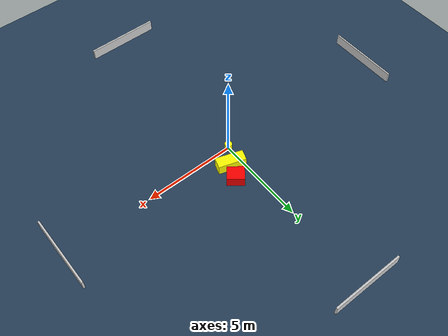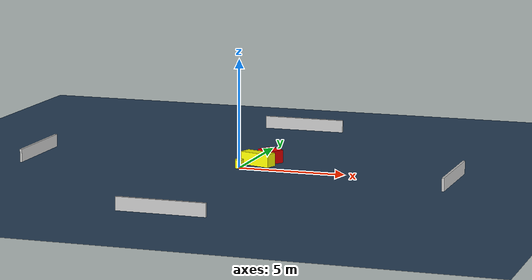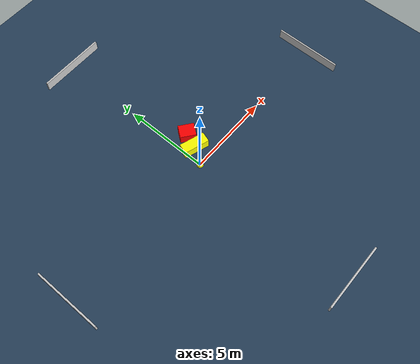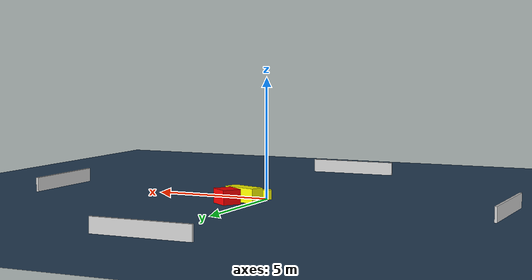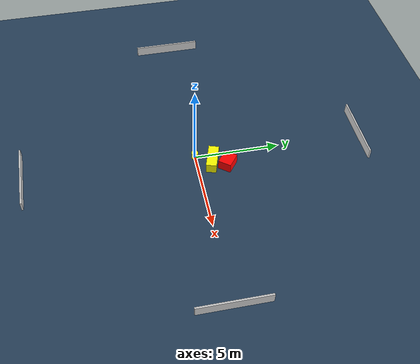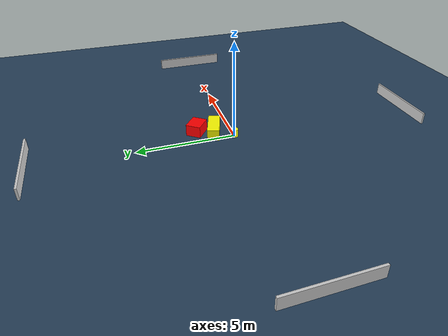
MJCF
<?xml version="1.0" ?>
<mujoco model="generated_environment">
  <option timestep="0.01" integrator="RK4" cone="elliptic"/>
  <default>
    <geom density="1"/>
  </default>
  <asset>
    <texture builtin="gradient" height="3072" name="skybox" rgb1="0.3 0.5 0.7" rgb2="0 0 0" type="skybox" width="512"/>
    <texture builtin="checker" height="300" name="groundplane" rgb1="0.2 0.3 0.4" rgb2="0.1 0.2 0.3" type="2d" width="300"/>
    <material name="groundplane" reflectance="0.2" texrepeat="5 5" texture="groundplane"/>
  </asset>
  <worldbody>
    <light dir="0 0 -1" directional="true" pos="0 0 1.5"/>
    <geom condim="3" friction="0.5 0.005 0.001" material="groundplane" name="floor" pos="0 0 0" size="0 0 0.05" type="plane"/>
    <body name="walls">
      <geom name="wall_1" condim="4" pos="-10.0 0.0 0.3" rgba="0.800000011920929 0.800000011920929 0.800000011920929 1.0" size="0.05 2.0 0.3" type="box"/>
      <geom name="wall_2" condim="4" pos="10.0 0.0 0.3" rgba="0.800000011920929 0.800000011920929 0.800000011920929 1.0" size="0.05 2.0 0.3" type="box"/>
      <geom name="wall_3" condim="4" pos="0.0 -10.0 0.3" rgba="0.800000011920929 0.800000011920929 0.800000011920929 1.0" size="2.0 0.05 0.3" type="box"/>
      <geom name="wall_4" condim="4" pos="0.0 10.0 0.3" rgba="0.800000011920929 0.800000011920929 0.800000011920929 1.0" size="2.0 0.05 0.3" type="box"/>
    </body>
    <body name="robot">
      <joint name="joint_x" type="slide" pos="0 0 0" axis="1 0 0"/>
      <joint name="joint_y" type="slide" pos="0 0 0" axis="0 1 0"/>
      <geom name="robot" type="cylinder" pos="0.0 0.0 0.2" size="0.2 0.2 0.0" mass="5.0" friction="1.0 0.005 0.0001" condim="4" rgba="1.0 1.0 0.0 1.0"/>
    </body>
    <body name="obstacle_1_movable">
      <geom name="obstacle_1_movable" condim="4" pos="0.5974554179276329 0.9236685398878762 0.3" euler="0 0 162.07820133610696" friction="0.0 0.005 0.001" rgba="1.0 1.0 0.0 1.0" size="0.7523021766099807 0.30092308136607815 0.3" type="box" mass="0.1"/>
      <joint type="free"/>
    </body>
    <body name="obstacle_2_static">
      <geom name="obstacle_2_static" condim="4" pos="0.9387324529936724 1.74948876408823 0.3" euler="0 0 52.542699764188164" friction="0.0 0.005 0.001" rgba="1.0 0.0 0.0 1.0" size="0.38447308643239336 0.46146869685782677 0.3" type="box"/>
    </body>
  </worldbody>
  <actuator>
    <motor name="actuator_x" joint="joint_x" gear="1" ctrlrange="-1 1"/>
    <motor name="actuator_y" joint="joint_y" gear="1" ctrlrange="-1 1"/>
  </actuator>
</mujoco>
